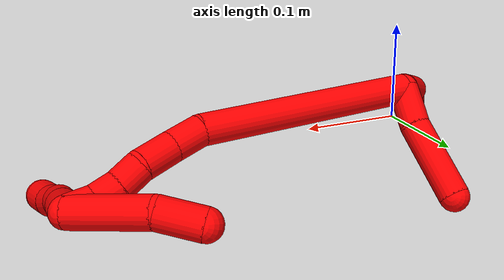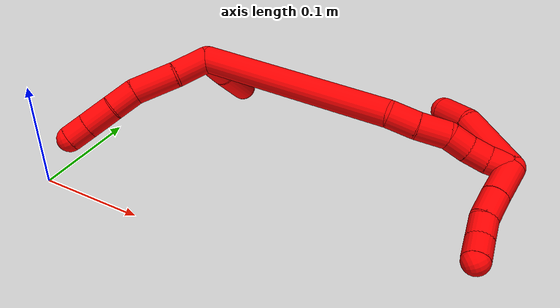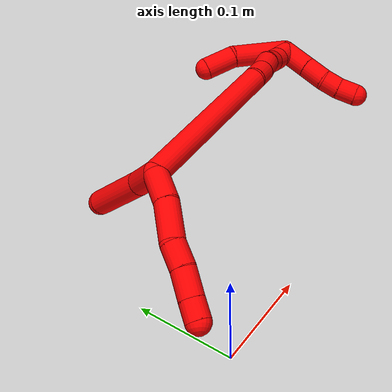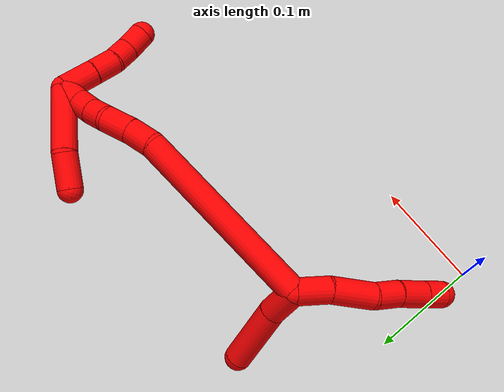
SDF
<sdf version="1.7">
 <world name="default">
  <model name="photoneo_s_sensor">
   <static>1</static>
   <pose>0 0 2 1.57079 1.57079 3.14159</pose>
   <link name="link">
    <inertial><mass>0.1</mass></inertial>
    <sensor name="sensor" type="depth">
     <update_rate>30</update_rate>
     <camera>
      <horizontal_fov>1.22</horizontal_fov>
      <image><width>1920</width><height>1200</height><format>B8G8R8</format></image>
      <clip><near>0.1</near><far>4</far></clip>
      <depth_camera><output>points</output></depth_camera>
     </camera>
     <plugin name="camera_plugin" filename="libgazebo_ros_depth_camera.so">
      <baseline>0.2</baseline>
      <alwaysOn>1</alwaysOn>
      <updateRate>0.0</updateRate>
      <cameraName>camera_ir</cameraName>
      <imageTopicName>/camera/color/image_raw</imageTopicName>
      <cameraInfoTopicName>/camera/color/camera_info</cameraInfoTopicName>
      <depthImageTopicName>/camera/depth/image_raw</depthImageTopicName>
      <depthImageCameraInfoTopicName>/camera/depth/camera_info</depthImageCameraInfoTopicName>
      <pointCloudTopicName>/camera/depth/points</pointCloudTopicName>
      <frameName>fr_optical</frameName>
      <pointCloudCutoff>0.1</pointCloudCutoff>
      <pointCloudCutoffMax>2.0</pointCloudCutoffMax>
      <distortionK1>0</distortionK1>
      <distortionK2>0</distortionK2>
      <distortionK3>0</distortionK3>
      <distortionT1>0</distortionT1>
      <distortionT2>0</distortionT2>
      <CxPrime>0</CxPrime>
      <Cx>0</Cx>
      <Cy>0</Cy>
      <focalLength>0</focalLength>
      <hackBaseline>0</hackBaseline>
     </plugin>
    </sensor>
   </link>
  </model>
  <model name="bin">
   <static>1</static>
   <link name="bottom">
    <collision name="collision-bottom">
     <pose>0 0 -0.01 0 -0 0</pose>
     <geometry><box><size>0.8 0.6 0.02</size></box></geometry>
     <surface>
      <friction><ode><mu>100</mu><mu2>100</mu2></ode></friction>
      <contact><collide_bitmask>65535</collide_bitmask></contact>
     </surface>
    </collision>
   </link>
   <link name="west_wall">
    <collision name="collision-west_wall">
     <pose>-0.41 0 0.1 0 -0 0</pose>
     <geometry><box><size>0.02 0.6 0.2</size></box></geometry>
     <surface>
      <friction><ode><mu>100</mu><mu2>100</mu2></ode></friction>
      <contact><collide_bitmask>65535</collide_bitmask></contact>
     </surface>
    </collision>
   </link>
   <link name="east_wall">
    <collision name="collision-east_wall">
     <pose>0.41 0 0.1 0 -0 0</pose>
     <geometry><box><size>0.02 0.6 0.2</size></box></geometry>
     <surface>
      <friction><ode><mu>100</mu><mu2>100</mu2></ode></friction>
      <contact><collide_bitmask>65535</collide_bitmask></contact>
     </surface>
    </collision>
   </link>
   <link name="south_wall">
    <collision name="collision-south_wall">
     <pose>0 -0.31 0.1 0 -0 0</pose>
     <geometry><box><size>0.8 0.02 0.2</size></box></geometry>
     <surface>
      <friction><ode><mu>100</mu><mu2>100</mu2></ode></friction>
      <contact><collide_bitmask>65535</collide_bitmask></contact>
     </surface>
    </collision>
   </link>
   <link name="north_wall">
    <collision name="collision-north_wall">
     <pose>0 0.31 0.1 0 -0 0</pose>
     <geometry><box><size>0.8 0.02 0.2</size></box></geometry>
     <surface>
      <friction><ode><mu>100</mu><mu2>100</mu2></ode></friction>
      <contact><collide_bitmask>65535</collide_bitmask></contact>
     </surface>
    </collision>
   </link>
  </model>
  <model name="2">
   <static>0</static>
   <link name="2">
    <collision name="collision-cylinder-e_1_2_8">
     <pose>0.001358 -0.004297 -0.016057 2.88014 0.081508 0.601464</pose>
     <geometry><cylinder><radius>0.0125</radius><length>0.033355</length></cylinder></geometry>
     <surface>
      <friction><ode><mu>1.16</mu><mu2>1.16</mu2><slip1>0</slip1><slip2>0</slip2></ode></friction>
      <contact><ode><kp>1e+06</kp><kd>1</kd><max_vel>0</max_vel><min_depth>0.001</min_depth></ode></contact>
     </surface>
    </collision>
    <visual name="visual-cylinder-e_1_2_8">
     <pose>0.001358 -0.004297 -0.016057 2.88014 0.081508 0.601464</pose>
     <geometry><cylinder><radius>0.0125</radius><length>0.033355</length></cylinder></geometry>
     <material><ambient>1 0 0 1</ambient></material>
    </visual>
    <collision name="collision-cylinder-e_2_8_9">
     <pose>0.002485 -0.010647 -0.052986 3.04353 -0.011011 -0.223454</pose>
     <geometry><cylinder><radius>0.0125</radius><length>0.041949</length></cylinder></geometry>
     <surface>
      <friction><ode><mu>1.16</mu><mu2>1.16</mu2><slip1>0</slip1><slip2>0</slip2></ode></friction>
      <contact><ode><kp>1e+06</kp><kd>1</kd><max_vel>0</max_vel><min_depth>0.001</min_depth></ode></contact>
     </surface>
    </collision>
    <visual name="visual-cylinder-e_2_8_9">
     <pose>0.002485 -0.010647 -0.052986 3.04353 -0.011011 -0.223454</pose>
     <geometry><cylinder><radius>0.0125</radius><length>0.041949</length></cylinder></geometry>
     <material><ambient>1 0 0 1</ambient></material>
    </visual>
    <collision name="collision-cylinder-e_3_9_10">
     <pose>0.005349 -0.015022 -0.086019 2.95294 0.24497 1.83109</pose>
     <geometry><cylinder><radius>0.0125</radius><length>0.025523</length></cylinder></geometry>
     <surface>
      <friction><ode><mu>1.16</mu><mu2>1.16</mu2><slip1>0</slip1><slip2>0</slip2></ode></friction>
      <contact><ode><kp>1e+06</kp><kd>1</kd><max_vel>0</max_vel><min_depth>0.001</min_depth></ode></contact>
     </surface>
    </collision>
    <visual name="visual-cylinder-e_3_9_10">
     <pose>0.005349 -0.015022 -0.086019 2.95294 0.24497 1.83109</pose>
     <geometry><cylinder><radius>0.0125</radius><length>0.025523</length></cylinder></geometry>
     <material><ambient>1 0 0 1</ambient></material>
    </visual>
    <collision name="collision-cylinder-e_4_10_11">
     <pose>0.011568 -0.018237 -0.112066 3.07733 0.2209 2.57737</pose>
     <geometry><cylinder><radius>0.0125</radius><length>0.028522</length></cylinder></geometry>
     <surface>
      <friction><ode><mu>1.16</mu><mu2>1.16</mu2><slip1>0</slip1><slip2>0</slip2></ode></friction>
      <contact><ode><kp>1e+06</kp><kd>1</kd><max_vel>0</max_vel><min_depth>0.001</min_depth></ode></contact>
     </surface>
    </collision>
    <visual name="visual-cylinder-e_4_10_11">
     <pose>0.011568 -0.018237 -0.112066 3.07733 0.2209 2.57737</pose>
     <geometry><cylinder><radius>0.0125</radius><length>0.028522</length></cylinder></geometry>
     <material><ambient>1 0 0 1</ambient></material>
    </visual>
    <collision name="collision-cylinder-e_5_11_6">
     <pose>0.016992 -0.020057 -0.135976 3.04942 0.224499 2.36489</pose>
     <geometry><cylinder><radius>0.0125</radius><length>0.020652</length></cylinder></geometry>
     <surface>
      <friction><ode><mu>1.16</mu><mu2>1.16</mu2><slip1>0</slip1><slip2>0</slip2></ode></friction>
      <contact><ode><kp>1e+06</kp><kd>1</kd><max_vel>0</max_vel><min_depth>0.001</min_depth></ode></contact>
     </surface>
    </collision>
    <visual name="visual-cylinder-e_5_11_6">
     <pose>0.016992 -0.020057 -0.135976 3.04942 0.224499 2.36489</pose>
     <geometry><cylinder><radius>0.0125</radius><length>0.020652</length></cylinder></geometry>
     <material><ambient>1 0 0 1</ambient></material>
    </visual>
    <collision name="collision-cylinder-e_1_2_12">
     <pose>0.006179 0.015702 0.002371 -1.42095 0.37107 -0.320204</pose>
     <geometry><cylinder><radius>0.0125</radius><length>0.034079</length></cylinder></geometry>
     <surface>
      <friction><ode><mu>1.16</mu><mu2>1.16</mu2><slip1>0</slip1><slip2>0</slip2></ode></friction>
      <contact><ode><kp>1e+06</kp><kd>1</kd><max_vel>0</max_vel><min_depth>0.001</min_depth></ode></contact>
     </surface>
    </collision>
    <visual name="visual-cylinder-e_1_2_12">
     <pose>0.006179 0.015702 0.002371 -1.42095 0.37107 -0.320204</pose>
     <geometry><cylinder><radius>0.0125</radius><length>0.034079</length></cylinder></geometry>
     <material><ambient>1 0 0 1</ambient></material>
    </visual>
    <collision name="collision-cylinder-e_2_12_5">
     <pose>0.018812 0.063615 0.007416 -1.48794 0.197112 -0.181511</pose>
     <geometry><cylinder><radius>0.0125</radius><length>0.065921</length></cylinder></geometry>
     <surface>
      <friction><ode><mu>1.16</mu><mu2>1.16</mu2><slip1>0</slip1><slip2>0</slip2></ode></friction>
      <contact><ode><kp>1e+06</kp><kd>1</kd><max_vel>0</max_vel><min_depth>0.001</min_depth></ode></contact>
     </surface>
    </collision>
    <visual name="visual-cylinder-e_2_12_5">
     <pose>0.018812 0.063615 0.007416 -1.48794 0.197112 -0.181511</pose>
     <geometry><cylinder><radius>0.0125</radius><length>0.065921</length></cylinder></geometry>
     <material><ambient>1 0 0 1</ambient></material>
    </visual>
    <collision name="collision-cylinder-e_1_2_13">
     <pose>0.058979 -0.023426 0.066523 0.33859 0.696461 0.123946</pose>
     <geometry><cylinder><radius>0.0125</radius><length>0.183876</length></cylinder></geometry>
     <surface>
      <friction><ode><mu>1.16</mu><mu2>1.16</mu2><slip1>0</slip1><slip2>0</slip2></ode></friction>
      <contact><ode><kp>1e+06</kp><kd>1</kd><max_vel>0</max_vel><min_depth>0.001</min_depth></ode></contact>
     </surface>
    </collision>
    <visual name="visual-cylinder-e_1_2_13">
     <pose>0.058979 -0.023426 0.066523 0.33859 0.696461 0.123946</pose>
     <geometry><cylinder><radius>0.0125</radius><length>0.183876</length></cylinder></geometry>
     <material><ambient>1 0 0 1</ambient></material>
    </visual>
    <collision name="collision-cylinder-e_2_13_14">
     <pose>0.127521 -0.046383 0.142127 -0.051677 0.810601 -0.022176</pose>
     <geometry><cylinder><radius>0.0125</radius><length>0.026394</length></cylinder></geometry>
     <surface>
      <friction><ode><mu>1.16</mu><mu2>1.16</mu2><slip1>0</slip1><slip2>0</slip2></ode></friction>
      <contact><ode><kp>1e+06</kp><kd>1</kd><max_vel>0</max_vel><min_depth>0.001</min_depth></ode></contact>
     </surface>
    </collision>
    <visual name="visual-cylinder-e_2_13_14">
     <pose>0.127521 -0.046383 0.142127 -0.051677 0.810601 -0.022176</pose>
     <geometry><cylinder><radius>0.0125</radius><length>0.026394</length></cylinder></geometry>
     <material><ambient>1 0 0 1</ambient></material>
    </visual>
    <collision name="collision-cylinder-e_3_14_15">
     <pose>0.146347 -0.044462 0.16199 -0.133784 0.705312 -0.049301</pose>
     <geometry><cylinder><radius>0.0125</radius><length>0.028575</length></cylinder></geometry>
     <surface>
      <friction><ode><mu>1.16</mu><mu2>1.16</mu2><slip1>0</slip1><slip2>0</slip2></ode></friction>
      <contact><ode><kp>1e+06</kp><kd>1</kd><max_vel>0</max_vel><min_depth>0.001</min_depth></ode></contact>
     </surface>
    </collision>
    <visual name="visual-cylinder-e_3_14_15">
     <pose>0.146347 -0.044462 0.16199 -0.133784 0.705312 -0.049301</pose>
     <geometry><cylinder><radius>0.0125</radius><length>0.028575</length></cylinder></geometry>
     <material><ambient>1 0 0 1</ambient></material>
    </visual>
    <collision name="collision-cylinder-e_4_15_16">
     <pose>0.164187 -0.040946 0.178159 -0.366027 0.978641 -0.196486</pose>
     <geometry><cylinder><radius>0.0125</radius><length>0.020676</length></cylinder></geometry>
     <surface>
      <friction><ode><mu>1.16</mu><mu2>1.16</mu2><slip1>0</slip1><slip2>0</slip2></ode></friction>
      <contact><ode><kp>1e+06</kp><kd>1</kd><max_vel>0</max_vel><min_depth>0.001</min_depth></ode></contact>
     </surface>
    </collision>
    <visual name="visual-cylinder-e_4_15_16">
     <pose>0.164187 -0.040946 0.178159 -0.366027 0.978641 -0.196486</pose>
     <geometry><cylinder><radius>0.0125</radius><length>0.020676</length></cylinder></geometry>
     <material><ambient>1 0 0 1</ambient></material>
    </visual>
    <collision name="collision-cylinder-e_5_16_17">
     <pose>0.180738 -0.038458 0.189613 -0.069454 0.919249 -0.034389</pose>
     <geometry><cylinder><radius>0.0125</radius><length>0.020054</length></cylinder></geometry>
     <surface>
      <friction><ode><mu>1.16</mu><mu2>1.16</mu2><slip1>0</slip1><slip2>0</slip2></ode></friction>
      <contact><ode><kp>1e+06</kp><kd>1</kd><max_vel>0</max_vel><min_depth>0.001</min_depth></ode></contact>
     </surface>
    </collision>
    <visual name="visual-cylinder-e_5_16_17">
     <pose>0.180738 -0.038458 0.189613 -0.069454 0.919249 -0.034389</pose>
     <geometry><cylinder><radius>0.0125</radius><length>0.020054</length></cylinder></geometry>
     <material><ambient>1 0 0 1</ambient></material>
    </visual>
    <collision name="collision-cylinder-e_6_17_1">
     <pose>0.195674 -0.039418 0.203022 0.185942 0.750163 0.073388</pose>
     <geometry><cylinder><radius>0.0125</radius><length>0.020425</length></cylinder></geometry>
     <surface>
      <friction><ode><mu>1.16</mu><mu2>1.16</mu2><slip1>0</slip1><slip2>0</slip2></ode></friction>
      <contact><ode><kp>1e+06</kp><kd>1</kd><max_vel>0</max_vel><min_depth>0.001</min_depth></ode></contact>
     </surface>
    </collision>
    <visual name="visual-cylinder-e_6_17_1">
     <pose>0.195674 -0.039418 0.203022 0.185942 0.750163 0.073388</pose>
     <geometry><cylinder><radius>0.0125</radius><length>0.020425</length></cylinder></geometry>
     <material><ambient>1 0 0 1</ambient></material>
    </visual>
    <collision name="collision-cylinder-e_1_1_18">
     <pose>0.209937 -0.049613 0.198326 2.50957 0.455092 1.23241</pose>
     <geometry><cylinder><radius>0.0125</radius><length>0.033221</length></cylinder></geometry>
     <surface>
      <friction><ode><mu>1.16</mu><mu2>1.16</mu2><slip1>0</slip1><slip2>0</slip2></ode></friction>
      <contact><ode><kp>1e+06</kp><kd>1</kd><max_vel>0</max_vel><min_depth>0.001</min_depth></ode></contact>
     </surface>
    </collision>
    <visual name="visual-cylinder-e_1_1_18">
     <pose>0.209937 -0.049613 0.198326 2.50957 0.455092 1.23241</pose>
     <geometry><cylinder><radius>0.0125</radius><length>0.033221</length></cylinder></geometry>
     <material><ambient>1 0 0 1</ambient></material>
    </visual>
    <collision name="collision-cylinder-e_2_18_19">
     <pose>0.223193 -0.064918 0.177378 2.5121 0.495276 1.32059</pose>
     <geometry><cylinder><radius>0.0125</radius><length>0.025058</length></cylinder></geometry>
     <surface>
      <friction><ode><mu>1.16</mu><mu2>1.16</mu2><slip1>0</slip1><slip2>0</slip2></ode></friction>
      <contact><ode><kp>1e+06</kp><kd>1</kd><max_vel>0</max_vel><min_depth>0.001</min_depth></ode></contact>
     </surface>
    </collision>
    <visual name="visual-cylinder-e_2_18_19">
     <pose>0.223193 -0.064918 0.177378 2.5121 0.495276 1.32059</pose>
     <geometry><cylinder><radius>0.0125</radius><length>0.025058</length></cylinder></geometry>
     <material><ambient>1 0 0 1</ambient></material>
    </visual>
    <collision name="collision-cylinder-e_3_19_20">
     <pose>0.235598 -0.076663 0.162889 2.38594 0.69961 1.48659</pose>
     <geometry><cylinder><radius>0.0125</radius><length>0.020032</length></cylinder></geometry>
     <surface>
      <friction><ode><mu>1.16</mu><mu2>1.16</mu2><slip1>0</slip1><slip2>0</slip2></ode></friction>
      <contact><ode><kp>1e+06</kp><kd>1</kd><max_vel>0</max_vel><min_depth>0.001</min_depth></ode></contact>
     </surface>
    </collision>
    <visual name="visual-cylinder-e_3_19_20">
     <pose>0.235598 -0.076663 0.162889 2.38594 0.69961 1.48659</pose>
     <geometry><cylinder><radius>0.0125</radius><length>0.020032</length></cylinder></geometry>
     <material><ambient>1 0 0 1</ambient></material>
    </visual>
    <collision name="collision-cylinder-e_4_20_4">
     <pose>0.247721 -0.089381 0.151863 2.20146 0.550679 1.015</pose>
     <geometry><cylinder><radius>0.0125</radius><length>0.021689</length></cylinder></geometry>
     <surface>
      <friction><ode><mu>1.16</mu><mu2>1.16</mu2><slip1>0</slip1><slip2>0</slip2></ode></friction>
      <contact><ode><kp>1e+06</kp><kd>1</kd><max_vel>0</max_vel><min_depth>0.001</min_depth></ode></contact>
     </surface>
    </collision>
    <visual name="visual-cylinder-e_4_20_4">
     <pose>0.247721 -0.089381 0.151863 2.20146 0.550679 1.015</pose>
     <geometry><cylinder><radius>0.0125</radius><length>0.021689</length></cylinder></geometry>
     <material><ambient>1 0 0 1</ambient></material>
    </visual>
    <collision name="collision-cylinder-e_1_1_21">
     <pose>0.177864 -0.02029 0.204861 -1.83295 -0.862141 1.08024</pose>
     <geometry><cylinder><radius>0.0125</radius><length>0.065255</length></cylinder></geometry>
     <surface>
      <friction><ode><mu>1.16</mu><mu2>1.16</mu2><slip1>0</slip1><slip2>0</slip2></ode></friction>
      <contact><ode><kp>1e+06</kp><kd>1</kd><max_vel>0</max_vel><min_depth>0.001</min_depth></ode></contact>
     </surface>
    </collision>
    <visual name="visual-cylinder-e_1_1_21">
     <pose>0.177864 -0.02029 0.204861 -1.83295 -0.862141 1.08024</pose>
     <geometry><cylinder><radius>0.0125</radius><length>0.065255</length></cylinder></geometry>
     <material><ambient>1 0 0 1</ambient></material>
    </visual>
    <collision name="collision-cylinder-e_2_21_3">
     <pose>0.143681 0.013344 0.192957 -2.02455 -0.572484 0.880365</pose>
     <geometry><cylinder><radius>0.0125</radius><length>0.034745</length></cylinder></geometry>
     <surface>
      <friction><ode><mu>1.16</mu><mu2>1.16</mu2><slip1>0</slip1><slip2>0</slip2></ode></friction>
      <contact><ode><kp>1e+06</kp><kd>1</kd><max_vel>0</max_vel><min_depth>0.001</min_depth></ode></contact>
     </surface>
    </collision>
    <visual name="visual-cylinder-e_2_21_3">
     <pose>0.143681 0.013344 0.192957 -2.02455 -0.572484 0.880365</pose>
     <geometry><cylinder><radius>0.0125</radius><length>0.034745</length></cylinder></geometry>
     <material><ambient>1 0 0 1</ambient></material>
    </visual>
    <collision name="collision-sphere-3">
     <pose>0.13427 0.026469 0.186556 0 -0 0</pose>
     <geometry><sphere><radius>0.0125</radius></sphere></geometry>
     <surface>
      <friction><ode><mu>1.16</mu><mu2>1.16</mu2><slip1>0</slip1><slip2>0</slip2></ode></friction>
      <contact><ode><kp>1e+06</kp><kd>1</kd><max_vel>0</max_vel><min_depth>0.001</min_depth></ode></contact>
     </surface>
    </collision>
    <visual name="visual-sphere-3">
     <pose>0.13427 0.026469 0.186556 0 -0 0</pose>
     <geometry><sphere><radius>0.0125</radius></sphere></geometry>
     <material><ambient>1 0 0 1</ambient></material>
    </visual>
    <collision name="collision-sphere-21">
     <pose>0.153092 0.000219 0.199358 0 -0 0</pose>
     <geometry><sphere><radius>0.0125</radius></sphere></geometry>
     <surface>
      <friction><ode><mu>1.16</mu><mu2>1.16</mu2><slip1>0</slip1><slip2>0</slip2></ode></friction>
      <contact><ode><kp>1e+06</kp><kd>1</kd><max_vel>0</max_vel><min_depth>0.001</min_depth></ode></contact>
     </surface>
    </collision>
    <visual name="visual-sphere-21">
     <pose>0.153092 0.000219 0.199358 0 -0 0</pose>
     <geometry><sphere><radius>0.0125</radius></sphere></geometry>
     <material><ambient>1 0 0 1</ambient></material>
    </visual>
    <collision name="collision-sphere-4">
     <pose>0.253396 -0.096845 0.146413 0 -0 0</pose>
     <geometry><sphere><radius>0.0125</radius></sphere></geometry>
     <surface>
      <friction><ode><mu>1.16</mu><mu2>1.16</mu2><slip1>0</slip1><slip2>0</slip2></ode></friction>
      <contact><ode><kp>1e+06</kp><kd>1</kd><max_vel>0</max_vel><min_depth>0.001</min_depth></ode></contact>
     </surface>
    </collision>
    <visual name="visual-sphere-4">
     <pose>0.253396 -0.096845 0.146413 0 -0 0</pose>
     <geometry><sphere><radius>0.0125</radius></sphere></geometry>
     <material><ambient>1 0 0 1</ambient></material>
    </visual>
    <collision name="collision-sphere-20">
     <pose>0.242047 -0.081918 0.157312 0 -0 0</pose>
     <geometry><sphere><radius>0.0125</radius></sphere></geometry>
     <surface>
      <friction><ode><mu>1.16</mu><mu2>1.16</mu2><slip1>0</slip1><slip2>0</slip2></ode></friction>
      <contact><ode><kp>1e+06</kp><kd>1</kd><max_vel>0</max_vel><min_depth>0.001</min_depth></ode></contact>
     </surface>
    </collision>
    <visual name="visual-sphere-20">
     <pose>0.242047 -0.081918 0.157312 0 -0 0</pose>
     <geometry><sphere><radius>0.0125</radius></sphere></geometry>
     <material><ambient>1 0 0 1</ambient></material>
    </visual>
    <collision name="collision-sphere-6">
     <pose>0.019291 -0.020984 -0.146 0 -0 0</pose>
     <geometry><sphere><radius>0.0125</radius></sphere></geometry>
     <surface>
      <friction><ode><mu>1.16</mu><mu2>1.16</mu2><slip1>0</slip1><slip2>0</slip2></ode></friction>
      <contact><ode><kp>1e+06</kp><kd>1</kd><max_vel>0</max_vel><min_depth>0.001</min_depth></ode></contact>
     </surface>
    </collision>
    <visual name="visual-sphere-6">
     <pose>0.019291 -0.020984 -0.146 0 -0 0</pose>
     <geometry><sphere><radius>0.0125</radius></sphere></geometry>
     <material><ambient>1 0 0 1</ambient></material>
    </visual>
    <collision name="collision-sphere-11">
     <pose>0.014693 -0.019131 -0.125951 0 -0 0</pose>
     <geometry><sphere><radius>0.0125</radius></sphere></geometry>
     <surface>
      <friction><ode><mu>1.16</mu><mu2>1.16</mu2><slip1>0</slip1><slip2>0</slip2></ode></friction>
      <contact><ode><kp>1e+06</kp><kd>1</kd><max_vel>0</max_vel><min_depth>0.001</min_depth></ode></contact>
     </surface>
    </collision>
    <visual name="visual-sphere-11">
     <pose>0.014693 -0.019131 -0.125951 0 -0 0</pose>
     <geometry><sphere><radius>0.0125</radius></sphere></geometry>
     <material><ambient>1 0 0 1</ambient></material>
    </visual>
    <collision name="collision-sphere-10">
     <pose>0.008444 -0.017343 -0.09818 0 -0 0</pose>
     <geometry><sphere><radius>0.0125</radius></sphere></geometry>
     <surface>
      <friction><ode><mu>1.16</mu><mu2>1.16</mu2><slip1>0</slip1><slip2>0</slip2></ode></friction>
      <contact><ode><kp>1e+06</kp><kd>1</kd><max_vel>0</max_vel><min_depth>0.001</min_depth></ode></contact>
     </surface>
    </collision>
    <visual name="visual-sphere-10">
     <pose>0.008444 -0.017343 -0.09818 0 -0 0</pose>
     <geometry><sphere><radius>0.0125</radius></sphere></geometry>
     <material><ambient>1 0 0 1</ambient></material>
    </visual>
    <collision name="collision-sphere-9">
     <pose>0.002254 -0.0127 -0.073859 0 -0 0</pose>
     <geometry><sphere><radius>0.0125</radius></sphere></geometry>
     <surface>
      <friction><ode><mu>1.16</mu><mu2>1.16</mu2><slip1>0</slip1><slip2>0</slip2></ode></friction>
      <contact><ode><kp>1e+06</kp><kd>1</kd><max_vel>0</max_vel><min_depth>0.001</min_depth></ode></contact>
     </surface>
    </collision>
    <visual name="visual-sphere-9">
     <pose>0.002254 -0.0127 -0.073859 0 -0 0</pose>
     <geometry><sphere><radius>0.0125</radius></sphere></geometry>
     <material><ambient>1 0 0 1</ambient></material>
    </visual>
    <collision name="collision-sphere-2">
     <geometry><sphere><radius>0.0125</radius></sphere></geometry>
     <surface>
      <friction><ode><mu>1.16</mu><mu2>1.16</mu2><slip1>0</slip1><slip2>0</slip2></ode></friction>
      <contact><ode><kp>1e+06</kp><kd>1</kd><max_vel>0</max_vel><min_depth>0.001</min_depth></ode></contact>
     </surface>
    </collision>
    <visual name="visual-sphere-2">
     <geometry><sphere><radius>0.0125</radius></sphere></geometry>
     <material><ambient>1 0 0 1</ambient></material>
    </visual>
    <collision name="collision-sphere-19">
     <pose>0.229148 -0.071408 0.168467 0 -0 0</pose>
     <geometry><sphere><radius>0.0125</radius></sphere></geometry>
     <surface>
      <friction><ode><mu>1.16</mu><mu2>1.16</mu2><slip1>0</slip1><slip2>0</slip2></ode></friction>
      <contact><ode><kp>1e+06</kp><kd>1</kd><max_vel>0</max_vel><min_depth>0.001</min_depth></ode></contact>
     </surface>
    </collision>
    <visual name="visual-sphere-19">
     <pose>0.229148 -0.071408 0.168467 0 -0 0</pose>
     <geometry><sphere><radius>0.0125</radius></sphere></geometry>
     <material><ambient>1 0 0 1</ambient></material>
    </visual>
    <collision name="collision-sphere-8">
     <pose>0.002716 -0.008593 -0.032114 0 -0 0</pose>
     <geometry><sphere><radius>0.0125</radius></sphere></geometry>
     <surface>
      <friction><ode><mu>1.16</mu><mu2>1.16</mu2><slip1>0</slip1><slip2>0</slip2></ode></friction>
      <contact><ode><kp>1e+06</kp><kd>1</kd><max_vel>0</max_vel><min_depth>0.001</min_depth></ode></contact>
     </surface>
    </collision>
    <visual name="visual-sphere-8">
     <pose>0.002716 -0.008593 -0.032114 0 -0 0</pose>
     <geometry><sphere><radius>0.0125</radius></sphere></geometry>
     <material><ambient>1 0 0 1</ambient></material>
    </visual>
    <collision name="collision-sphere-12">
     <pose>0.012357 0.031404 0.004741 0 -0 0</pose>
     <geometry><sphere><radius>0.0125</radius></sphere></geometry>
     <surface>
      <friction><ode><mu>1.16</mu><mu2>1.16</mu2><slip1>0</slip1><slip2>0</slip2></ode></friction>
      <contact><ode><kp>1e+06</kp><kd>1</kd><max_vel>0</max_vel><min_depth>0.001</min_depth></ode></contact>
     </surface>
    </collision>
    <visual name="visual-sphere-12">
     <pose>0.012357 0.031404 0.004741 0 -0 0</pose>
     <geometry><sphere><radius>0.0125</radius></sphere></geometry>
     <material><ambient>1 0 0 1</ambient></material>
    </visual>
    <collision name="collision-sphere-5">
     <pose>0.025267 0.095826 0.010091 0 -0 0</pose>
     <geometry><sphere><radius>0.0125</radius></sphere></geometry>
     <surface>
      <friction><ode><mu>1.16</mu><mu2>1.16</mu2><slip1>0</slip1><slip2>0</slip2></ode></friction>
      <contact><ode><kp>1e+06</kp><kd>1</kd><max_vel>0</max_vel><min_depth>0.001</min_depth></ode></contact>
     </surface>
    </collision>
    <visual name="visual-sphere-5">
     <pose>0.025267 0.095826 0.010091 0 -0 0</pose>
     <geometry><sphere><radius>0.0125</radius></sphere></geometry>
     <material><ambient>1 0 0 1</ambient></material>
    </visual>
    <collision name="collision-sphere-13">
     <pose>0.117958 -0.046852 0.133046 0 -0 0</pose>
     <geometry><sphere><radius>0.0125</radius></sphere></geometry>
     <surface>
      <friction><ode><mu>1.16</mu><mu2>1.16</mu2><slip1>0</slip1><slip2>0</slip2></ode></friction>
      <contact><ode><kp>1e+06</kp><kd>1</kd><max_vel>0</max_vel><min_depth>0.001</min_depth></ode></contact>
     </surface>
    </collision>
    <visual name="visual-sphere-13">
     <pose>0.117958 -0.046852 0.133046 0 -0 0</pose>
     <geometry><sphere><radius>0.0125</radius></sphere></geometry>
     <material><ambient>1 0 0 1</ambient></material>
    </visual>
    <collision name="collision-sphere-14">
     <pose>0.137085 -0.045913 0.151209 0 -0 0</pose>
     <geometry><sphere><radius>0.0125</radius></sphere></geometry>
     <surface>
      <friction><ode><mu>1.16</mu><mu2>1.16</mu2><slip1>0</slip1><slip2>0</slip2></ode></friction>
      <contact><ode><kp>1e+06</kp><kd>1</kd><max_vel>0</max_vel><min_depth>0.001</min_depth></ode></contact>
     </surface>
    </collision>
    <visual name="visual-sphere-14">
     <pose>0.137085 -0.045913 0.151209 0 -0 0</pose>
     <geometry><sphere><radius>0.0125</radius></sphere></geometry>
     <material><ambient>1 0 0 1</ambient></material>
    </visual>
    <collision name="collision-sphere-15">
     <pose>0.15561 -0.043011 0.172771 0 -0 0</pose>
     <geometry><sphere><radius>0.0125</radius></sphere></geometry>
     <surface>
      <friction><ode><mu>1.16</mu><mu2>1.16</mu2><slip1>0</slip1><slip2>0</slip2></ode></friction>
      <contact><ode><kp>1e+06</kp><kd>1</kd><max_vel>0</max_vel><min_depth>0.001</min_depth></ode></contact>
     </surface>
    </collision>
    <visual name="visual-sphere-15">
     <pose>0.15561 -0.043011 0.172771 0 -0 0</pose>
     <geometry><sphere><radius>0.0125</radius></sphere></geometry>
     <material><ambient>1 0 0 1</ambient></material>
    </visual>
    <collision name="collision-sphere-16">
     <pose>0.172765 -0.03888 0.183547 0 -0 0</pose>
     <geometry><sphere><radius>0.0125</radius></sphere></geometry>
     <surface>
      <friction><ode><mu>1.16</mu><mu2>1.16</mu2><slip1>0</slip1><slip2>0</slip2></ode></friction>
      <contact><ode><kp>1e+06</kp><kd>1</kd><max_vel>0</max_vel><min_depth>0.001</min_depth></ode></contact>
     </surface>
    </collision>
    <visual name="visual-sphere-16">
     <pose>0.172765 -0.03888 0.183547 0 -0 0</pose>
     <geometry><sphere><radius>0.0125</radius></sphere></geometry>
     <material><ambient>1 0 0 1</ambient></material>
    </visual>
    <collision name="collision-sphere-17">
     <pose>0.188711 -0.038036 0.195679 0 -0 0</pose>
     <geometry><sphere><radius>0.0125</radius></sphere></geometry>
     <surface>
      <friction><ode><mu>1.16</mu><mu2>1.16</mu2><slip1>0</slip1><slip2>0</slip2></ode></friction>
      <contact><ode><kp>1e+06</kp><kd>1</kd><max_vel>0</max_vel><min_depth>0.001</min_depth></ode></contact>
     </surface>
    </collision>
    <visual name="visual-sphere-17">
     <pose>0.188711 -0.038036 0.195679 0 -0 0</pose>
     <geometry><sphere><radius>0.0125</radius></sphere></geometry>
     <material><ambient>1 0 0 1</ambient></material>
    </visual>
    <collision name="collision-sphere-1">
     <pose>0.202636 -0.040799 0.210364 0 -0 0</pose>
     <geometry><sphere><radius>0.0125</radius></sphere></geometry>
     <surface>
      <friction><ode><mu>1.16</mu><mu2>1.16</mu2><slip1>0</slip1><slip2>0</slip2></ode></friction>
      <contact><ode><kp>1e+06</kp><kd>1</kd><max_vel>0</max_vel><min_depth>0.001</min_depth></ode></contact>
     </surface>
    </collision>
    <visual name="visual-sphere-1">
     <pose>0.202636 -0.040799 0.210364 0 -0 0</pose>
     <geometry><sphere><radius>0.0125</radius></sphere></geometry>
     <material><ambient>1 0 0 1</ambient></material>
    </visual>
    <collision name="collision-sphere-18">
     <pose>0.217238 -0.058428 0.186288 0 -0 0</pose>
     <geometry><sphere><radius>0.0125</radius></sphere></geometry>
     <surface>
      <friction><ode><mu>1.16</mu><mu2>1.16</mu2><slip1>0</slip1><slip2>0</slip2></ode></friction>
      <contact><ode><kp>1e+06</kp><kd>1</kd><max_vel>0</max_vel><min_depth>0.001</min_depth></ode></contact>
     </surface>
    </collision>
    <visual name="visual-sphere-18">
     <pose>0.217238 -0.058428 0.186288 0 -0 0</pose>
     <geometry><sphere><radius>0.0125</radius></sphere></geometry>
     <material><ambient>1 0 0 1</ambient></material>
    </visual>
    <inertial>
     <pose>0.094779 -0.018685 0.079359 0 -0 0</pose>
     <mass>0.75</mass>
     <inertia>
      <ixx>0.000549</ixx>
      <ixy>0</ixy>
      <ixz>0</ixz>
      <iyy>0.000606</iyy>
      <iyz>0</iyz>
      <izz>-0.000245</izz>
     </inertia>
    </inertial>
   </link>
   <pose>0.085732 0.141929 0.082286 -1.00658 0.799654 -0.453641</pose>
  </model>
 </world>
</sdf>
